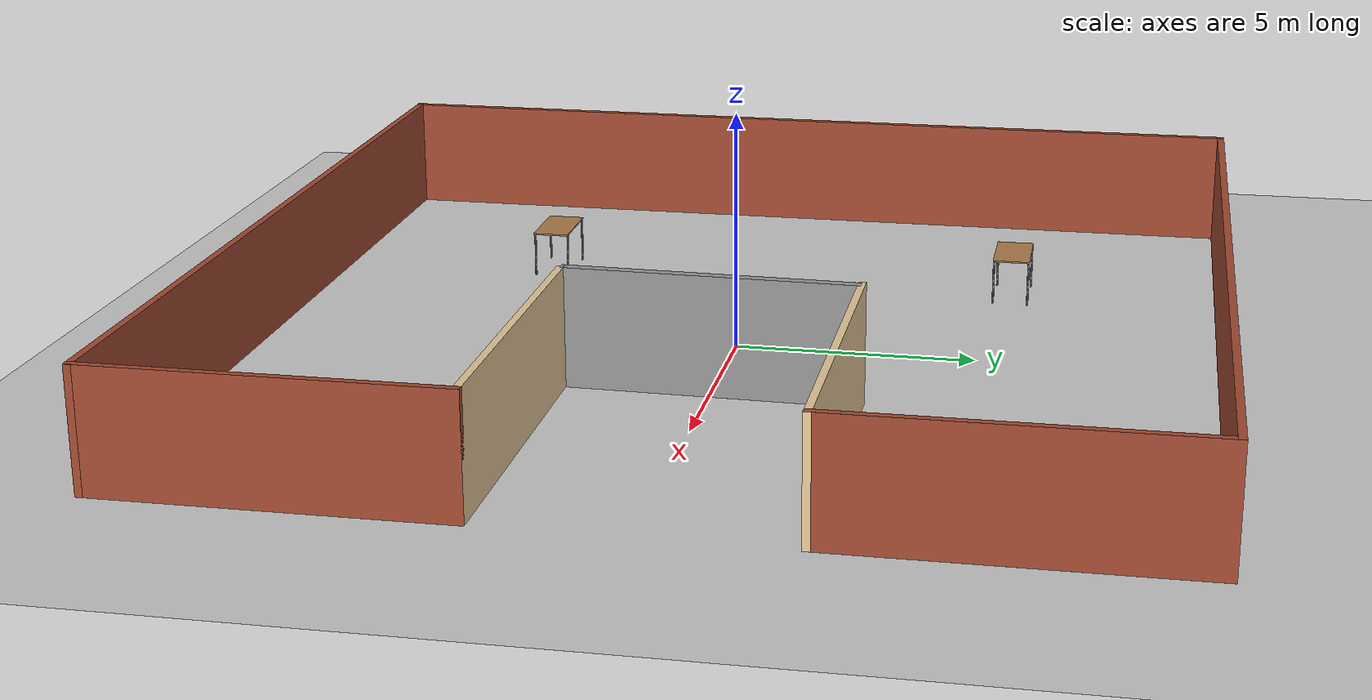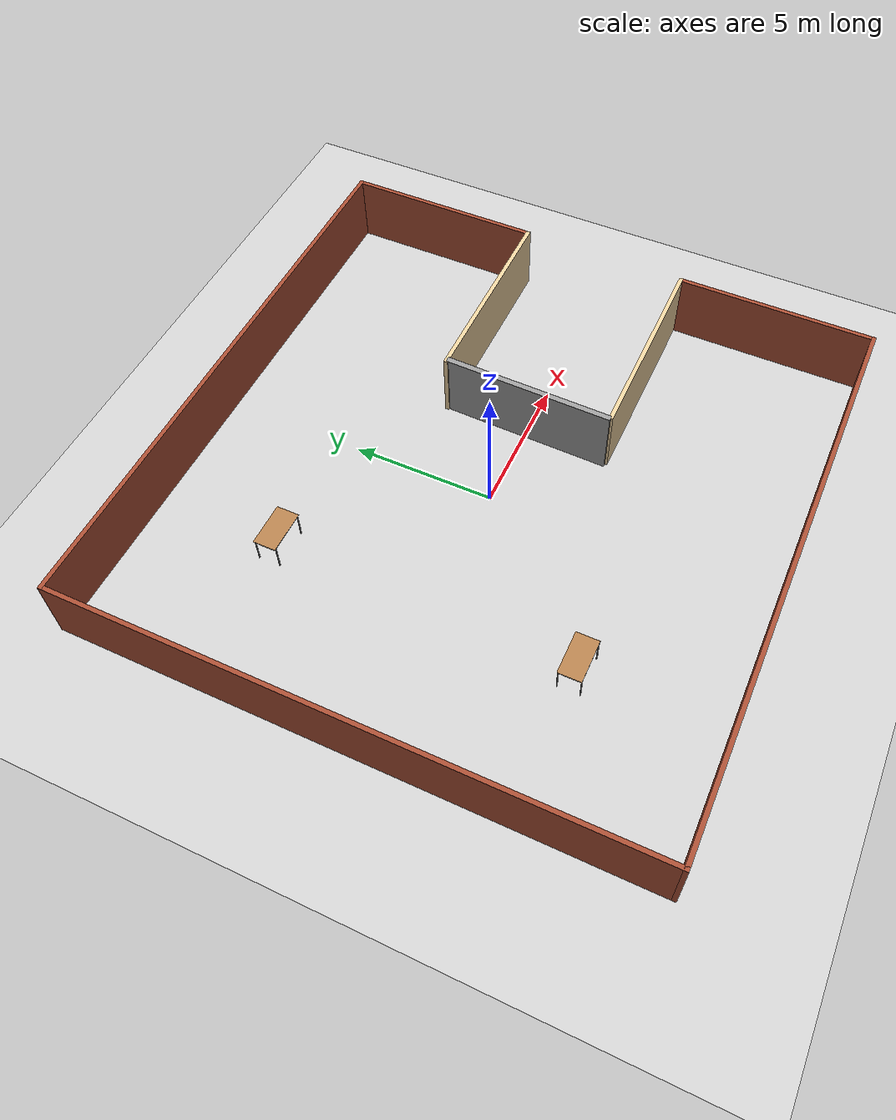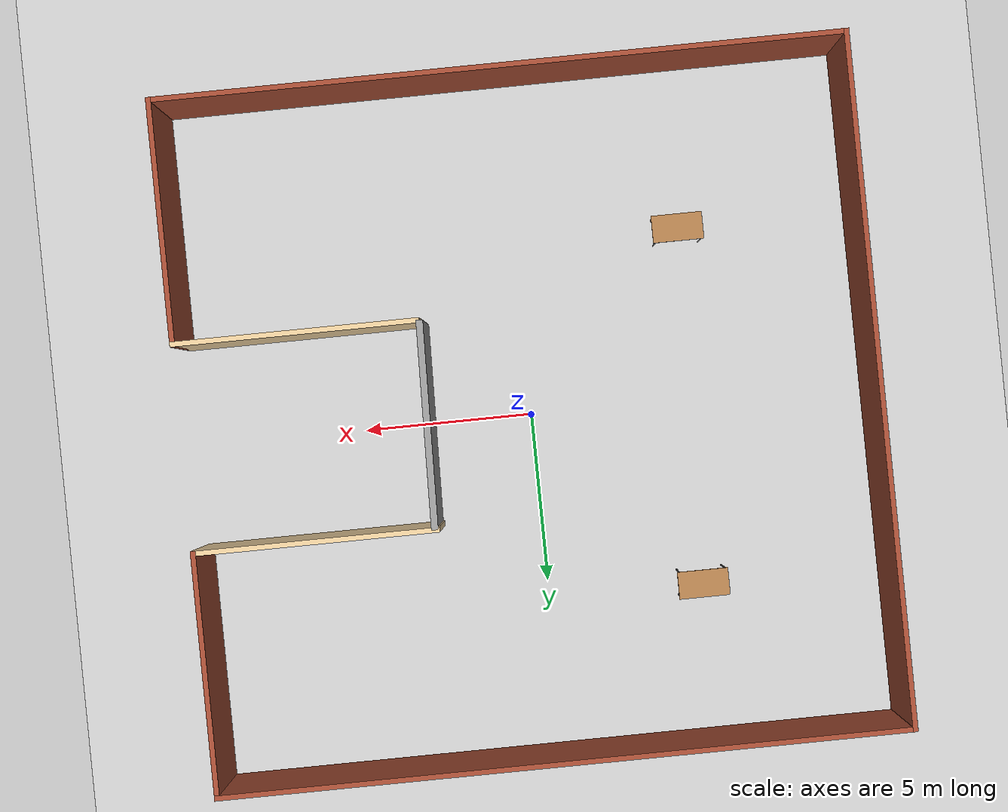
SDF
<sdf version="1.6">
 <world name="default">
  <plugin name="welcome_message" filename="libwelcome_message.so"/>
  <light name="sun" type="directional">
   <pose>0 0 10 0 -0 0</pose>
   <diffuse>0.8 0.8 0.8 1</diffuse>
   <specular>0.2 0.2 0.2 1</specular>
   <attenuation>
    <range>1000</range>
    <constant>0.9</constant>
    <linear>0.01</linear>
    <quadratic>0.001</quadratic>
   </attenuation>
   <direction>-0.5 0.1 -0.9</direction>
  </light>
  <model name="ground_plane">
   <static>1</static>
   <link name="link">
    <collision name="collision">
     <geometry><plane><normal>0 0 1</normal><size>100 100</size></plane></geometry>
     <surface>
      <contact><collide_bitmask>65535</collide_bitmask></contact>
      <friction><ode><mu>100</mu><mu2>50</mu2></ode></friction>
     </surface>
    </collision>
    <visual name="visual">
     <cast_shadows>0</cast_shadows>
     <geometry><plane><normal>0 0 1</normal><size>100 100</size></plane></geometry>
     <material>
      <script><uri>file://media/materials/scripts/gazebo.material</uri><name>Gazebo/Grey</name></script>
     </material>
    </visual>
   </link>
  </model>
  <gravity>0 0 -9.8</gravity>
  <magnetic_field>6e-06 2.3e-05 -4.2e-05</magnetic_field>
  <atmosphere type="adiabatic"/>
  <physics name="default_physics" default="0" type="ode">
   <max_step_size>0.001</max_step_size>
   <real_time_factor>1</real_time_factor>
   <real_time_update_rate>1000</real_time_update_rate>
  </physics>
  <scene><ambient>0.4 0.4 0.4 1</ambient><background>0.7 0.7 0.7 1</background><shadows>1</shadows></scene>
  <spherical_coordinates>
   <surface_model>EARTH_WGS84</surface_model>
   <latitude_deg>0</latitude_deg>
   <longitude_deg>0</longitude_deg>
   <elevation>0</elevation>
   <heading_deg>0</heading_deg>
  </spherical_coordinates>
  <model name="Building_0">
   <link name="Door_0">
    <collision name="Door_0_Collision">
     <geometry><box><size>6 0.2 2.5</size></box></geometry>
     <pose>0 0 1.25 0 -0 0</pose>
    </collision>
    <visual name="Door_0_Visual">
     <pose>0 0 1.25 0 -0 0</pose>
     <geometry><box><size>6 0.2 2.5</size></box></geometry>
     <material>
      <script><uri>file://media/materials/scripts/gazebo.material</uri><name>Gazebo/Grey</name></script>
     </material>
    </visual>
    <pose>3 0 0 0 -0 1.54682</pose>
   </link>
   <link name="Wall_10">
    <collision name="Wall_10_Collision">
     <geometry><box><size>20.15 0.15 2.5</size></box></geometry>
     <pose>0 0 1.25 0 -0 0</pose>
    </collision>
    <visual name="Wall_10_Visual">
     <pose>0 0 1.25 0 -0 0</pose>
     <geometry><box><size>20.15 0.15 2.5</size></box></geometry>
     <material>
      <script><uri>file://media/materials/scripts/gazebo.material</uri><name>Gazebo/Bricks</name></script>
      <ambient>1 1 1 1</ambient>
     </material>
     <meta><layer>0</layer></meta>
    </visual>
    <pose>-10 0 0 0 -0 1.5708</pose>
   </link>
   <link name="Wall_11">
    <collision name="Wall_11_Collision">
     <geometry><box><size>20.15 0.15 2.5</size></box></geometry>
     <pose>0 0 1.25 0 -0 0</pose>
    </collision>
    <visual name="Wall_11_Visual">
     <pose>0 0 1.25 0 -0 0</pose>
     <geometry><box><size>20.15 0.15 2.5</size></box></geometry>
     <material>
      <script><uri>file://media/materials/scripts/gazebo.material</uri><name>Gazebo/Bricks</name></script>
      <ambient>1 1 1 1</ambient>
     </material>
     <meta><layer>0</layer></meta>
    </visual>
    <pose>0 10 0 0 -0 0</pose>
   </link>
   <link name="Wall_12">
    <collision name="Wall_12_Collision">
     <geometry><box><size>7.15 0.15 2.5</size></box></geometry>
     <pose>0 0 1.25 0 -0 0</pose>
    </collision>
    <visual name="Wall_12_Visual">
     <pose>0 0 1.25 0 -0 0</pose>
     <geometry><box><size>7.15 0.15 2.5</size></box></geometry>
     <material>
      <script><uri>file://media/materials/scripts/gazebo.material</uri><name>Gazebo/Bricks</name></script>
      <ambient>1 1 1 1</ambient>
     </material>
     <meta><layer>0</layer></meta>
    </visual>
    <pose>10 6.5 0 0 -0 -1.5708</pose>
   </link>
   <link name="Wall_13">
    <collision name="Wall_13_Collision">
     <geometry><box><size>7.15 0.15 2.5</size></box></geometry>
     <pose>0 0 1.25 0 -0 0</pose>
    </collision>
    <visual name="Wall_13_Visual">
     <pose>0 0 1.25 0 -0 0</pose>
     <geometry><box><size>7.15 0.15 2.5</size></box></geometry>
     <material>
      <script><uri>file://media/materials/scripts/gazebo.material</uri><name>Gazebo/Grey</name></script>
      <ambient>0.921569 0.807843 0.615686 1</ambient>
     </material>
     <meta><layer>0</layer></meta>
    </visual>
    <pose>6.5 3 0 0 -0 3.14159</pose>
   </link>
   <link name="Wall_7">
    <collision name="Wall_7_Collision">
     <geometry><box><size>7.15 0.15 2.5</size></box></geometry>
     <pose>0 0 1.25 0 -0 0</pose>
    </collision>
    <visual name="Wall_7_Visual">
     <pose>0 0 1.25 0 -0 0</pose>
     <geometry><box><size>7.15 0.15 2.5</size></box></geometry>
     <material>
      <script><uri>file://media/materials/scripts/gazebo.material</uri><name>Gazebo/Grey</name></script>
      <ambient>0.921569 0.807843 0.615686 1</ambient>
     </material>
     <meta><layer>0</layer></meta>
    </visual>
    <pose>6.5 -3 0 0 -0 0</pose>
   </link>
   <link name="Wall_8">
    <collision name="Wall_8_Collision">
     <geometry><box><size>7.15 0.15 2.5</size></box></geometry>
     <pose>0 0 1.25 0 -0 0</pose>
    </collision>
    <visual name="Wall_8_Visual">
     <pose>0 0 1.25 0 -0 0</pose>
     <geometry><box><size>7.15 0.15 2.5</size></box></geometry>
     <material>
      <script><uri>file://media/materials/scripts/gazebo.material</uri><name>Gazebo/Bricks</name></script>
      <ambient>1 1 1 1</ambient>
     </material>
     <meta><layer>0</layer></meta>
    </visual>
    <pose>10 -6.5 0 0 -0 -1.5708</pose>
   </link>
   <link name="Wall_9">
    <collision name="Wall_9_Collision">
     <geometry><box><size>20.15 0.15 2.5</size></box></geometry>
     <pose>0 0 1.25 0 -0 0</pose>
    </collision>
    <visual name="Wall_9_Visual">
     <pose>0 0 1.25 0 -0 0</pose>
     <geometry><box><size>20.15 0.15 2.5</size></box></geometry>
     <material>
      <script><uri>file://media/materials/scripts/gazebo.material</uri><name>Gazebo/Bricks</name></script>
      <ambient>1 1 1 1</ambient>
     </material>
     <meta><layer>0</layer></meta>
    </visual>
    <pose>0 -10 0 0 -0 3.14159</pose>
   </link>
   <static>1</static>
  </model>
  <model name="table">
   <static>1</static>
   <link name="link">
    <collision name="surface">
     <pose>0 0 1 0 -0 0</pose>
     <geometry><box><size>1.5 0.8 0.03</size></box></geometry>
     <surface><friction><ode><mu>0.6</mu><mu2>0.6</mu2></ode></friction></surface>
    </collision>
    <visual name="visual1">
     <pose>0 0 1 0 -0 0</pose>
     <geometry><box><size>1.5 0.8 0.03</size></box></geometry>
     <material>
      <script><uri>file://media/materials/scripts/gazebo.material</uri><name>Gazebo/Wood</name></script>
     </material>
    </visual>
    <collision name="front_left_leg">
     <pose>0.68 0.38 0.5 0 -0 0</pose>
     <geometry><cylinder><radius>0.02</radius><length>1</length></cylinder></geometry>
    </collision>
    <visual name="front_left_leg">
     <pose>0.68 0.38 0.5 0 -0 0</pose>
     <geometry><cylinder><radius>0.02</radius><length>1</length></cylinder></geometry>
     <material>
      <script><uri>file://media/materials/scripts/gazebo.material</uri><name>Gazebo/Grey</name></script>
     </material>
    </visual>
    <collision name="front_right_leg">
     <pose>0.68 -0.38 0.5 0 -0 0</pose>
     <geometry><cylinder><radius>0.02</radius><length>1</length></cylinder></geometry>
    </collision>
    <visual name="front_right_leg">
     <pose>0.68 -0.38 0.5 0 -0 0</pose>
     <geometry><cylinder><radius>0.02</radius><length>1</length></cylinder></geometry>
     <material>
      <script><uri>file://media/materials/scripts/gazebo.material</uri><name>Gazebo/Grey</name></script>
     </material>
    </visual>
    <collision name="back_right_leg">
     <pose>-0.68 -0.38 0.5 0 -0 0</pose>
     <geometry><cylinder><radius>0.02</radius><length>1</length></cylinder></geometry>
    </collision>
    <visual name="back_right_leg">
     <pose>-0.68 -0.38 0.5 0 -0 0</pose>
     <geometry><cylinder><radius>0.02</radius><length>1</length></cylinder></geometry>
     <material>
      <script><uri>file://media/materials/scripts/gazebo.material</uri><name>Gazebo/Grey</name></script>
     </material>
    </visual>
    <collision name="back_left_leg">
     <pose>-0.68 0.38 0.5 0 -0 0</pose>
     <geometry><cylinder><radius>0.02</radius><length>1</length></cylinder></geometry>
    </collision>
    <visual name="back_left_leg">
     <pose>-0.68 0.38 0.5 0 -0 0</pose>
     <geometry><cylinder><radius>0.02</radius><length>1</length></cylinder></geometry>
     <material>
      <script><uri>file://media/materials/scripts/gazebo.material</uri><name>Gazebo/Grey</name></script>
     </material>
    </visual>
   </link>
   <pose>-4.8212 -5.07911 0 0 -0 0</pose>
  </model>
  <model name="table_0">
   <static>1</static>
   <link name="link">
    <collision name="surface">
     <pose>0 0 1 0 -0 0</pose>
     <geometry><box><size>1.5 0.8 0.03</size></box></geometry>
     <surface><friction><ode><mu>0.6</mu><mu2>0.6</mu2></ode></friction></surface>
    </collision>
    <visual name="visual1">
     <pose>0 0 1 0 -0 0</pose>
     <geometry><box><size>1.5 0.8 0.03</size></box></geometry>
     <material>
      <script><uri>file://media/materials/scripts/gazebo.material</uri><name>Gazebo/Wood</name></script>
     </material>
    </visual>
    <collision name="front_left_leg">
     <pose>0.68 0.38 0.5 0 -0 0</pose>
     <geometry><cylinder><radius>0.02</radius><length>1</length></cylinder></geometry>
    </collision>
    <visual name="front_left_leg">
     <pose>0.68 0.38 0.5 0 -0 0</pose>
     <geometry><cylinder><radius>0.02</radius><length>1</length></cylinder></geometry>
     <material>
      <script><uri>file://media/materials/scripts/gazebo.material</uri><name>Gazebo/Grey</name></script>
     </material>
    </visual>
    <collision name="front_right_leg">
     <pose>0.68 -0.38 0.5 0 -0 0</pose>
     <geometry><cylinder><radius>0.02</radius><length>1</length></cylinder></geometry>
    </collision>
    <visual name="front_right_leg">
     <pose>0.68 -0.38 0.5 0 -0 0</pose>
     <geometry><cylinder><radius>0.02</radius><length>1</length></cylinder></geometry>
     <material>
      <script><uri>file://media/materials/scripts/gazebo.material</uri><name>Gazebo/Grey</name></script>
     </material>
    </visual>
    <collision name="back_right_leg">
     <pose>-0.68 -0.38 0.5 0 -0 0</pose>
     <geometry><cylinder><radius>0.02</radius><length>1</length></cylinder></geometry>
    </collision>
    <visual name="back_right_leg">
     <pose>-0.68 -0.38 0.5 0 -0 0</pose>
     <geometry><cylinder><radius>0.02</radius><length>1</length></cylinder></geometry>
     <material>
      <script><uri>file://media/materials/scripts/gazebo.material</uri><name>Gazebo/Grey</name></script>
     </material>
    </visual>
    <collision name="back_left_leg">
     <pose>-0.68 0.38 0.5 0 -0 0</pose>
     <geometry><cylinder><radius>0.02</radius><length>1</length></cylinder></geometry>
    </collision>
    <visual name="back_left_leg">
     <pose>-0.68 0.38 0.5 0 -0 0</pose>
     <geometry><cylinder><radius>0.02</radius><length>1</length></cylinder></geometry>
     <material>
      <script><uri>file://media/materials/scripts/gazebo.material</uri><name>Gazebo/Grey</name></script>
     </material>
    </visual>
   </link>
   <pose>-4.56168 5.45817 0 0 -0 0</pose>
  </model>
 </world>
</sdf>
